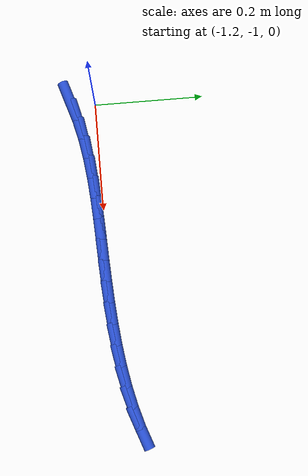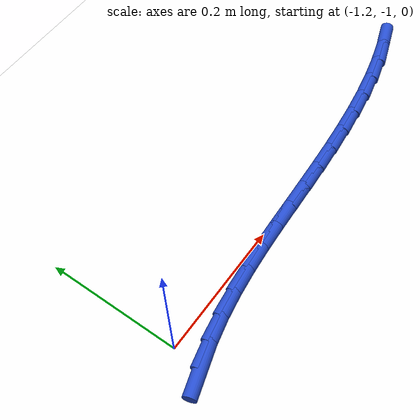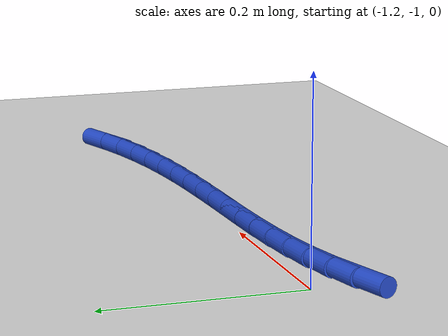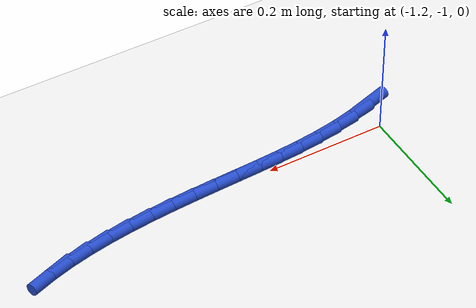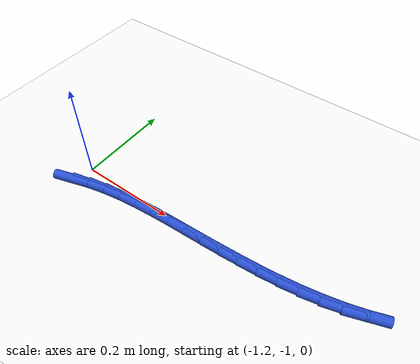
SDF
<sdf version="1.6">
 <world name="default">
  <model name="ground_plane">
   <static>1</static>
   <link name="link">
    <collision name="collision">
     <geometry><plane><normal>0 0 1</normal><size>100 100</size></plane></geometry>
     <surface><friction><ode><mu>100</mu><mu2>50</mu2></ode></friction></surface>
    </collision>
    <visual name="visual">
     <cast_shadows>0</cast_shadows>
     <geometry><plane><normal>0 0 1</normal><size>100 100</size></plane></geometry>
     <material>
      <script><uri>file://media/materials/scripts/gazebo.material</uri><name>Gazebo/WhiteGlow</name></script>
     </material>
    </visual>
   </link>
  </model>
  <model name="line">
   <link name="link_152">
    <pose>-1.2055596035832215 -1.0448389238537346 0.01 0 1.57 0.2982180435953865</pose>
    <collision name="collision">
     <geometry><cylinder><radius>0.01</radius><length>0.08</length></cylinder></geometry>
    </collision>
    <visual name="visual">
     <material>
      <script><name>Gazebo/Blue</name><uri>file://media/materials/scripts/gazebo.material</uri></script>
     </material>
     <geometry><cylinder><radius>0.01</radius><length>0.08</length></cylinder></geometry>
    </visual>
   </link>
   <link name="link_153">
    <pose>-1.170015545194047 -1.033913218679383 0.01 0 1.57 0.22605153557082222</pose>
    <collision name="collision">
     <geometry><cylinder><radius>0.01</radius><length>0.08</length></cylinder></geometry>
    </collision>
    <visual name="visual">
     <material>
      <script><name>Gazebo/Blue</name><uri>file://media/materials/scripts/gazebo.material</uri></script>
     </material>
     <geometry><cylinder><radius>0.01</radius><length>0.08</length></cylinder></geometry>
    </visual>
   </link>
   <link name="link_154">
    <pose>-1.1337269332402775 -1.0255674818296112 0.01 0 1.57 0.16582601481918885</pose>
    <collision name="collision">
     <geometry><cylinder><radius>0.01</radius><length>0.08</length></cylinder></geometry>
    </collision>
    <visual name="visual">
     <material>
      <script><name>Gazebo/Blue</name><uri>file://media/materials/scripts/gazebo.material</uri></script>
     </material>
     <geometry><cylinder><radius>0.01</radius><length>0.08</length></cylinder></geometry>
    </visual>
   </link>
   <link name="link_155">
    <pose>-1.096799271885254 -1.0193871614198458 0.01 0 1.57 0.11769467709296069</pose>
    <collision name="collision">
     <geometry><cylinder><radius>0.01</radius><length>0.08</length></cylinder></geometry>
    </collision>
    <visual name="visual">
     <material>
      <script><name>Gazebo/Blue</name><uri>file://media/materials/scripts/gazebo.material</uri></script>
     </material>
     <geometry><cylinder><radius>0.01</radius><length>0.08</length></cylinder></geometry>
    </visual>
   </link>
   <link name="link_156">
    <pose>-1.0593380652923192 -1.0149577055655137 0.01 0 1.57 0.08145580328083728</pose>
    <collision name="collision">
     <geometry><cylinder><radius>0.01</radius><length>0.08</length></cylinder></geometry>
    </collision>
    <visual name="visual">
     <material>
      <script><name>Gazebo/Blue</name><uri>file://media/materials/scripts/gazebo.material</uri></script>
     </material>
     <geometry><cylinder><radius>0.01</radius><length>0.08</length></cylinder></geometry>
    </visual>
   </link>
   <link name="link_157">
    <pose>-1.0214488176248149 -1.0118645623820413 0.01 0 1.57 0.056763895068088654</pose>
    <collision name="collision">
     <geometry><cylinder><radius>0.01</radius><length>0.08</length></cylinder></geometry>
    </collision>
    <visual name="visual">
     <material>
      <script><name>Gazebo/Blue</name><uri>file://media/materials/scripts/gazebo.material</uri></script>
     </material>
     <geometry><cylinder><radius>0.01</radius><length>0.08</length></cylinder></geometry>
    </visual>
   </link>
   <link name="link_158">
    <pose>-0.9832370330460835 -1.009693179984856 0.01 0 1.57 0.04327831236009603</pose>
    <collision name="collision">
     <geometry><cylinder><radius>0.01</radius><length>0.08</length></cylinder></geometry>
    </collision>
    <visual name="visual">
     <material>
      <script><name>Gazebo/Blue</name><uri>file://media/materials/scripts/gazebo.material</uri></script>
     </material>
     <geometry><cylinder><radius>0.01</radius><length>0.08</length></cylinder></geometry>
    </visual>
   </link>
   <link name="link_159">
    <pose>-0.9448082157194666 -1.0080290064893842 0.01 0 1.57 0.04064051684115921</pose>
    <collision name="collision">
     <geometry><cylinder><radius>0.01</radius><length>0.08</length></cylinder></geometry>
    </collision>
    <visual name="visual">
     <material>
      <script><name>Gazebo/Blue</name><uri>file://media/materials/scripts/gazebo.material</uri></script>
     </material>
     <geometry><cylinder><radius>0.01</radius><length>0.08</length></cylinder></geometry>
    </visual>
   </link>
   <link name="link_160">
    <pose>-0.9062681640914289 -1.0064618559815657 0.01 0 1.57 0.046457835504819675</pose>
    <collision name="collision">
     <geometry><cylinder><radius>0.01</radius><length>0.08</length></cylinder></geometry>
    </collision>
    <visual name="visual">
     <material>
      <script><name>Gazebo/Blue</name><uri>file://media/materials/scripts/gazebo.material</uri></script>
     </material>
     <geometry><cylinder><radius>0.01</radius><length>0.08</length></cylinder></geometry>
    </visual>
   </link>
   <link name="link_161">
    <pose>-0.8677286459987239 -1.0046701041398558 0.01 0 1.57 0.05863763259086061</pose>
    <collision name="collision">
     <geometry><cylinder><radius>0.01</radius><length>0.08</length></cylinder></geometry>
    </collision>
    <visual name="visual">
     <material>
      <script><name>Gazebo/Blue</name><uri>file://media/materials/scripts/gazebo.material</uri></script>
     </material>
     <geometry><cylinder><radius>0.01</radius><length>0.08</length></cylinder></geometry>
    </visual>
   </link>
   <link name="link_162">
    <pose>-0.8293069858192219 -1.0024145632244064 0.01 0 1.57 0.07723978883965563</pose>
    <collision name="collision">
     <geometry><cylinder><radius>0.01</radius><length>0.08</length></cylinder></geometry>
    </collision>
    <visual name="visual">
     <material>
      <script><name>Gazebo/Blue</name><uri>file://media/materials/scripts/gazebo.material</uri></script>
     </material>
     <geometry><cylinder><radius>0.01</radius><length>0.08</length></cylinder></geometry>
    </visual>
   </link>
   <link name="link_163">
    <pose>-0.7911207195111072 -0.999459184490914 0.01 0 1.57 0.10249242031302376</pose>
    <collision name="collision">
     <geometry><cylinder><radius>0.01</radius><length>0.08</length></cylinder></geometry>
    </collision>
    <visual name="visual">
     <material>
      <script><name>Gazebo/Blue</name><uri>file://media/materials/scripts/gazebo.material</uri></script>
     </material>
     <geometry><cylinder><radius>0.01</radius><length>0.08</length></cylinder></geometry>
    </visual>
   </link>
   <link name="link_164">
    <pose>-0.7532873830325639 -0.9955679191950746 0.01 0 1.57 0.134693718075008</pose>
    <collision name="collision">
     <geometry><cylinder><radius>0.01</radius><length>0.08</length></cylinder></geometry>
    </collision>
    <visual name="visual">
     <material>
      <script><name>Gazebo/Blue</name><uri>file://media/materials/scripts/gazebo.material</uri></script>
     </material>
     <geometry><cylinder><radius>0.01</radius><length>0.08</length></cylinder></geometry>
    </visual>
   </link>
   <link name="link_165">
    <pose>-0.7159245123417763 -0.9905047185925852 0.01 0 1.57 0.17418433929362653</pose>
    <collision name="collision">
     <geometry><cylinder><radius>0.01</radius><length>0.08</length></cylinder></geometry>
    </collision>
    <visual name="visual">
     <material>
      <script><name>Gazebo/Blue</name><uri>file://media/materials/scripts/gazebo.material</uri></script>
     </material>
     <geometry><cylinder><radius>0.01</radius><length>0.08</length></cylinder></geometry>
    </visual>
   </link>
   <link name="link_166">
    <pose>-0.6791496433969284 -0.9840335339391417 0.01 0 1.57 0.221304359806858</pose>
    <collision name="collision">
     <geometry><cylinder><radius>0.01</radius><length>0.08</length></cylinder></geometry>
    </collision>
    <visual name="visual">
     <material>
      <script><name>Gazebo/Blue</name><uri>file://media/materials/scripts/gazebo.material</uri></script>
     </material>
     <geometry><cylinder><radius>0.01</radius><length>0.08</length></cylinder></geometry>
    </visual>
   </link>
   <link name="link_167">
    <pose>-0.643080312156205 -0.9759183164904404 0.01 0 1.57 0.2763296807913923</pose>
    <collision name="collision">
     <geometry><cylinder><radius>0.01</radius><length>0.08</length></cylinder></geometry>
    </collision>
    <visual name="visual">
     <material>
      <script><name>Gazebo/Blue</name><uri>file://media/materials/scripts/gazebo.material</uri></script>
     </material>
     <geometry><cylinder><radius>0.01</radius><length>0.08</length></cylinder></geometry>
    </visual>
   </link>
   <link name="link_168">
    <pose>-0.6078340545777889 -0.9659230175021778 0.01 0 1.57 0.3393847216958381</pose>
    <collision name="collision">
     <geometry><cylinder><radius>0.01</radius><length>0.08</length></cylinder></geometry>
    </collision>
    <visual name="visual">
     <material>
      <script><name>Gazebo/Blue</name><uri>file://media/materials/scripts/gazebo.material</uri></script>
     </material>
     <geometry><cylinder><radius>0.01</radius><length>0.08</length></cylinder></geometry>
    </visual>
   </link>
  </model>
 </world>
</sdf>
